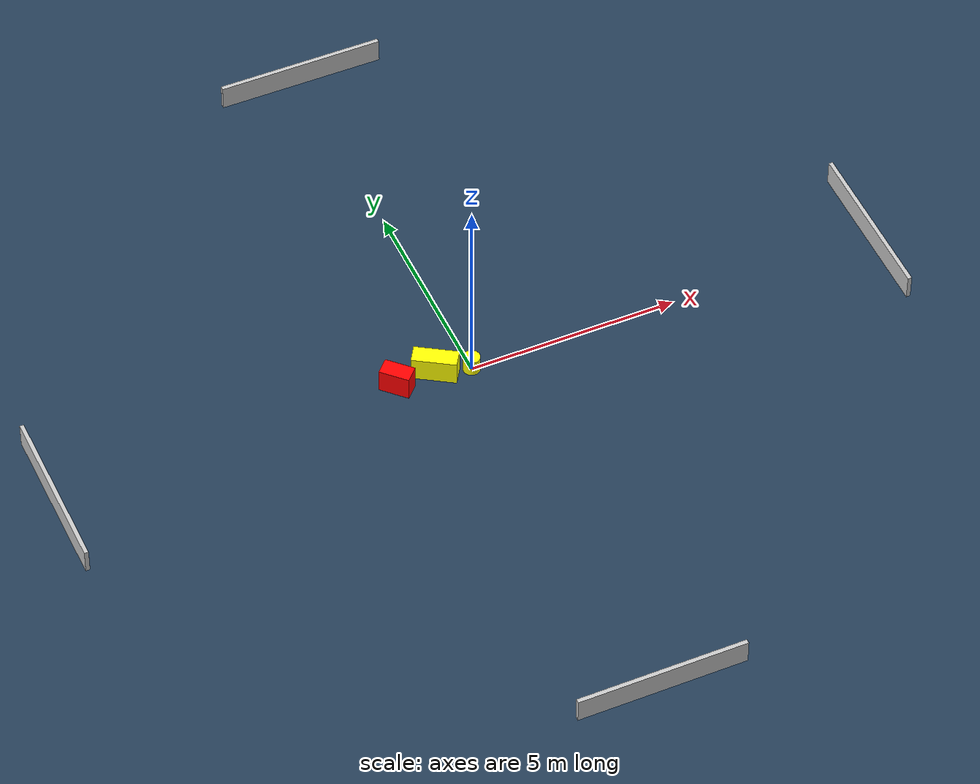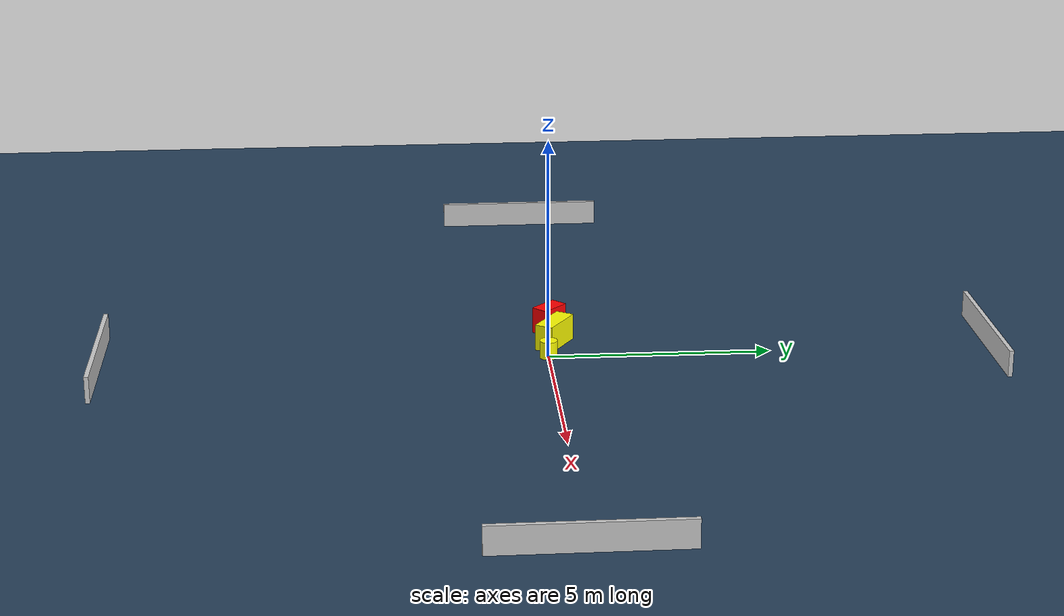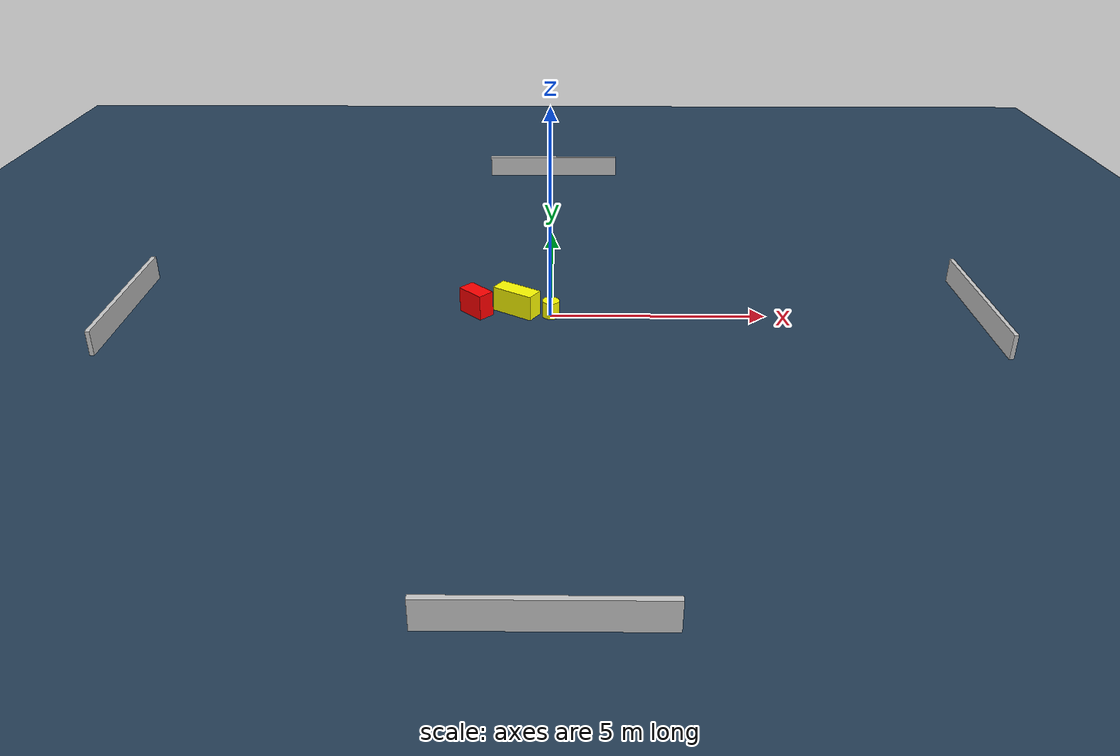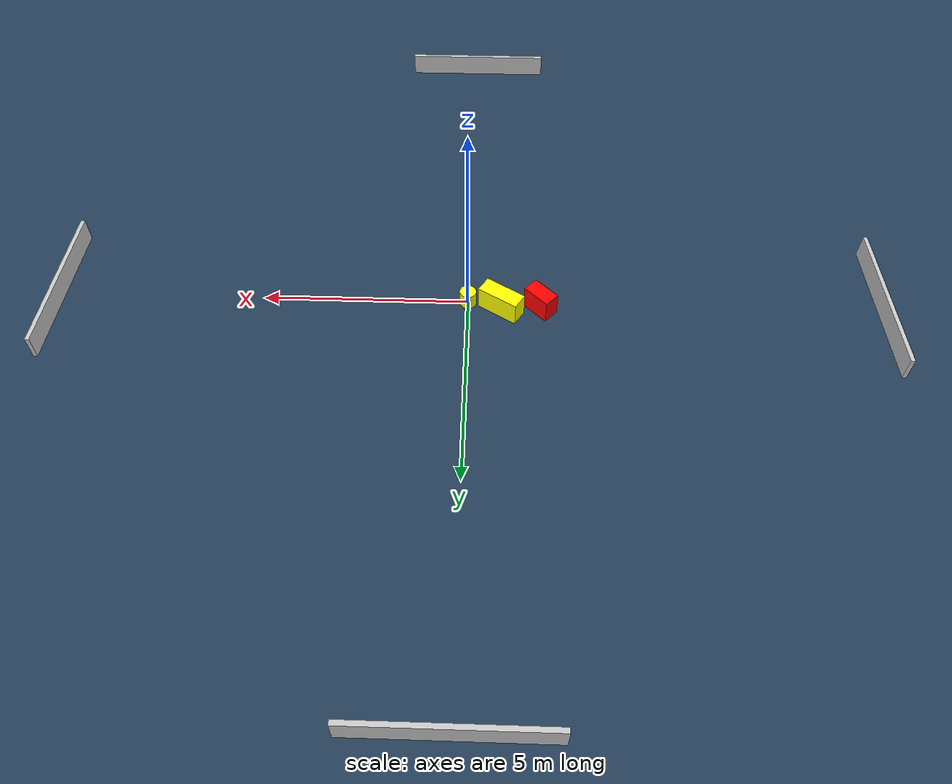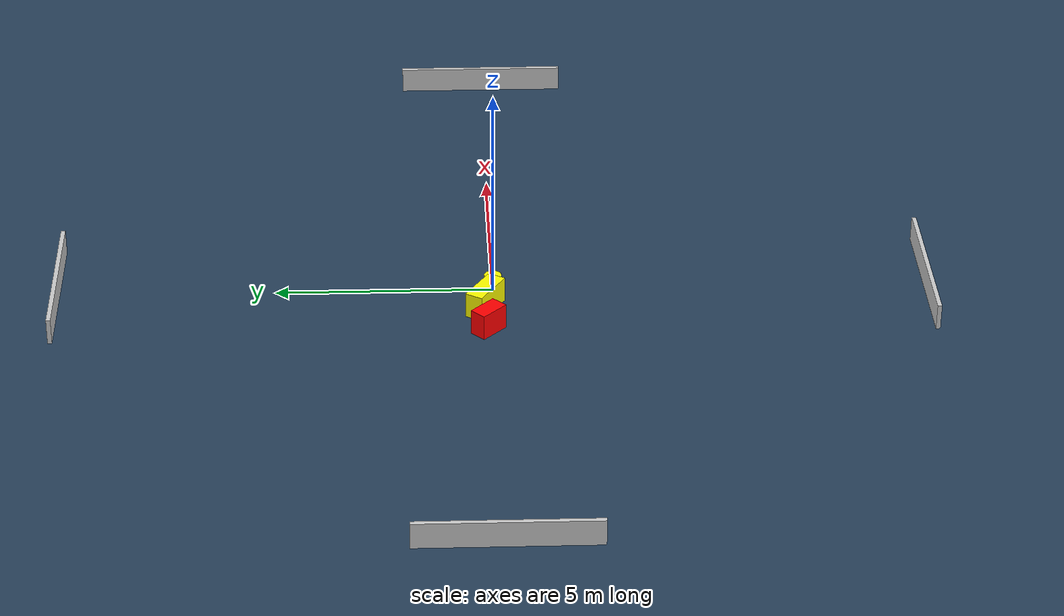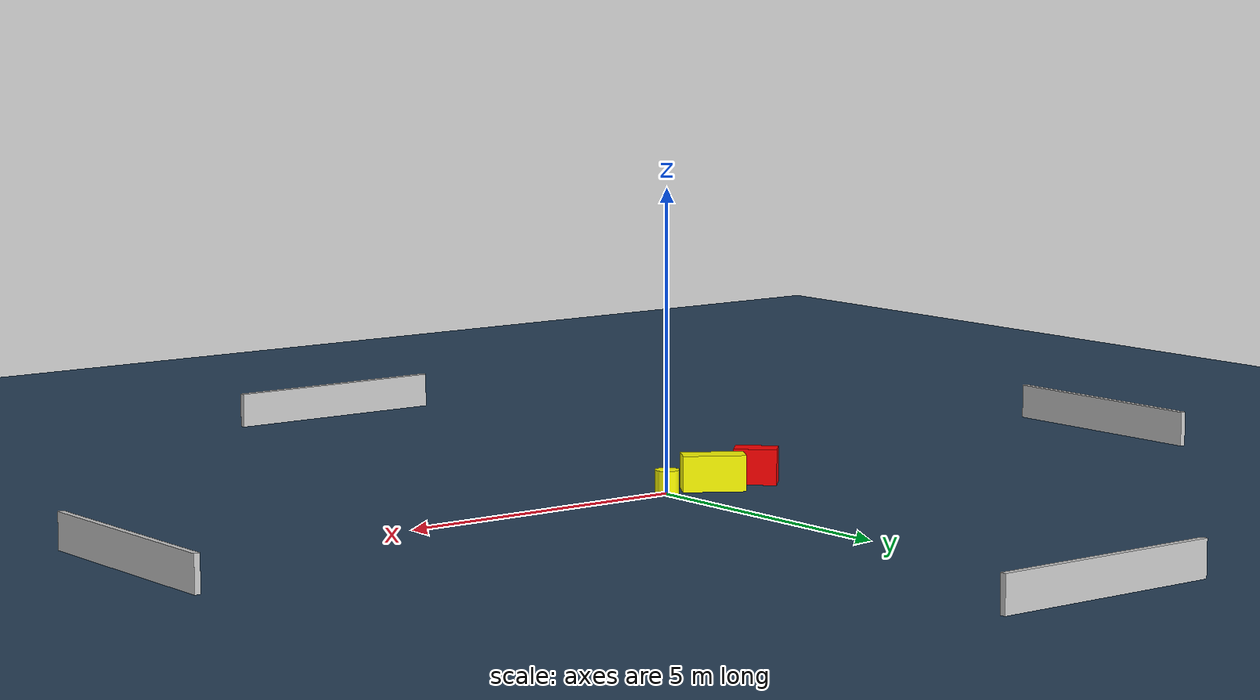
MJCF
<?xml version="1.0" ?>
<mujoco model="generated_environment">
  <option timestep="0.01" integrator="RK4" cone="elliptic"/>
  <default>
    <geom density="1"/>
  </default>
  <asset>
    <texture builtin="gradient" height="3072" name="skybox" rgb1="0.3 0.5 0.7" rgb2="0 0 0" type="skybox" width="512"/>
    <texture builtin="checker" height="300" name="groundplane" rgb1="0.2 0.3 0.4" rgb2="0.1 0.2 0.3" type="2d" width="300"/>
    <material name="groundplane" reflectance="0.2" texrepeat="5 5" texture="groundplane"/>
  </asset>
  <worldbody>
    <light dir="0 0 -1" directional="true" pos="0 0 1.5"/>
    <geom condim="3" friction="0.5 0.005 0.001" material="groundplane" name="floor" pos="0 0 0" size="0 0 0.05" type="plane"/>
    <body name="walls">
      <geom name="wall_1" condim="4" pos="-10.0 0.0 0.3" rgba="0.800000011920929 0.800000011920929 0.800000011920929 1.0" size="0.05 2.0 0.3" type="box"/>
      <geom name="wall_2" condim="4" pos="10.0 0.0 0.3" rgba="0.800000011920929 0.800000011920929 0.800000011920929 1.0" size="0.05 2.0 0.3" type="box"/>
      <geom name="wall_3" condim="4" pos="0.0 -10.0 0.3" rgba="0.800000011920929 0.800000011920929 0.800000011920929 1.0" size="2.0 0.05 0.3" type="box"/>
      <geom name="wall_4" condim="4" pos="0.0 10.0 0.3" rgba="0.800000011920929 0.800000011920929 0.800000011920929 1.0" size="2.0 0.05 0.3" type="box"/>
    </body>
    <body name="robot">
      <joint name="joint_x" type="slide" pos="0 0 0" axis="1 0 0"/>
      <joint name="joint_y" type="slide" pos="0 0 0" axis="0 1 0"/>
      <geom name="robot" type="cylinder" pos="0.0 0.0 0.2" size="0.2 0.2 0.0" mass="5.0" friction="1.0 0.005 0.0001" condim="4" rgba="1.0 1.0 0.0 1.0"/>
    </body>
    <body name="obstacle_1_movable">
      <geom name="obstacle_1_movable" condim="4" pos="-0.8073464401416194 0.19529053405205263 0.3" euler="0 0 237.8021419162636" friction="0.0 0.005 0.001" rgba="1.0 1.0 0.0 1.0" size="0.21072753968029906 0.522536903388557 0.3" type="box" mass="0.1"/>
      <joint type="free"/>
    </body>
    <body name="obstacle_2_static">
      <geom name="obstacle_2_static" condim="4" pos="-1.7564394668578296 0.15068278451997635 0.3" euler="0 0 135.1252098927705" friction="0.0 0.005 0.001" rgba="1.0 0.0 0.0 1.0" size="0.35998544919903297 0.20181834015135788 0.3" type="box"/>
    </body>
  </worldbody>
  <actuator>
    <motor name="actuator_x" joint="joint_x" gear="1" ctrlrange="-1 1"/>
    <motor name="actuator_y" joint="joint_y" gear="1" ctrlrange="-1 1"/>
  </actuator>
</mujoco>
